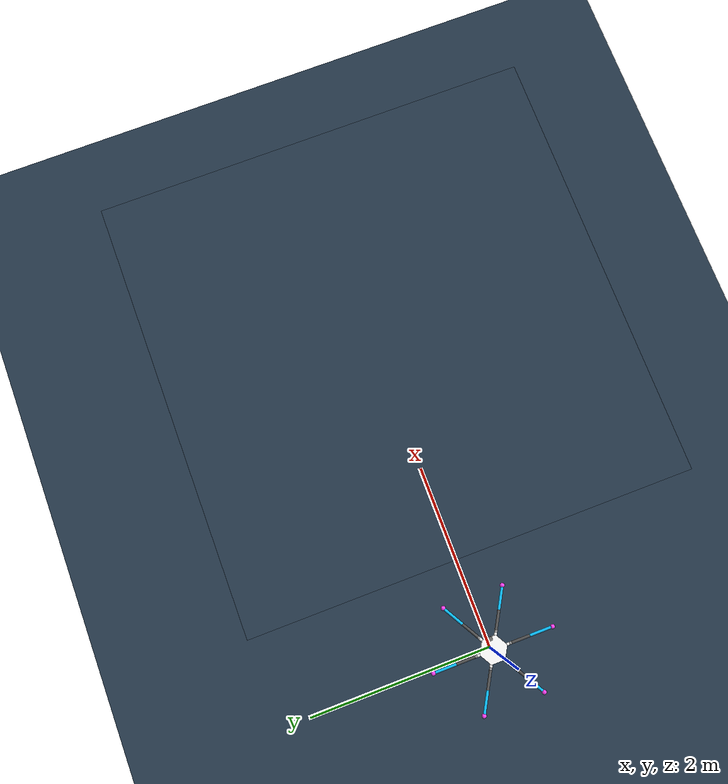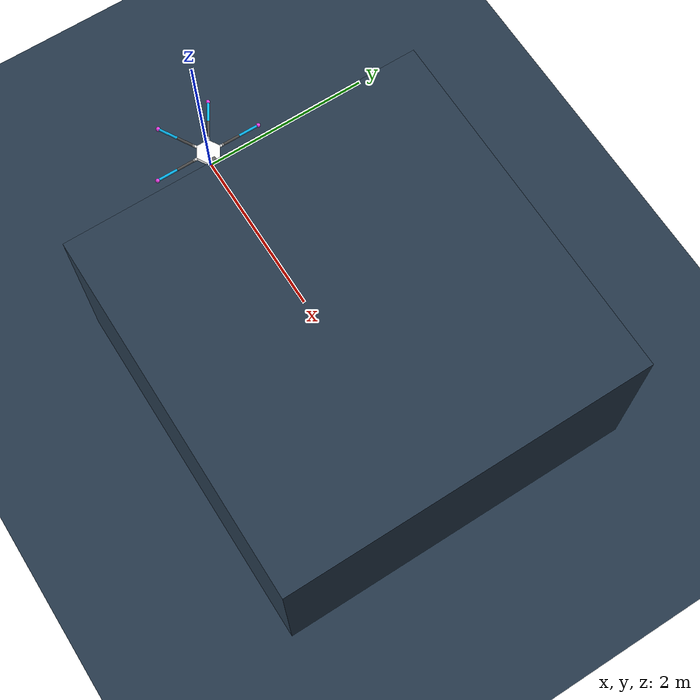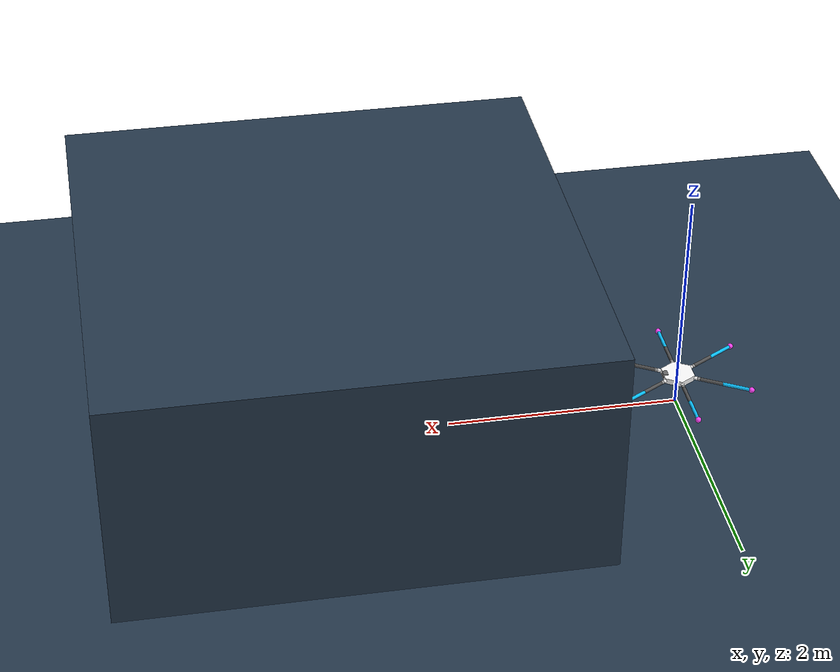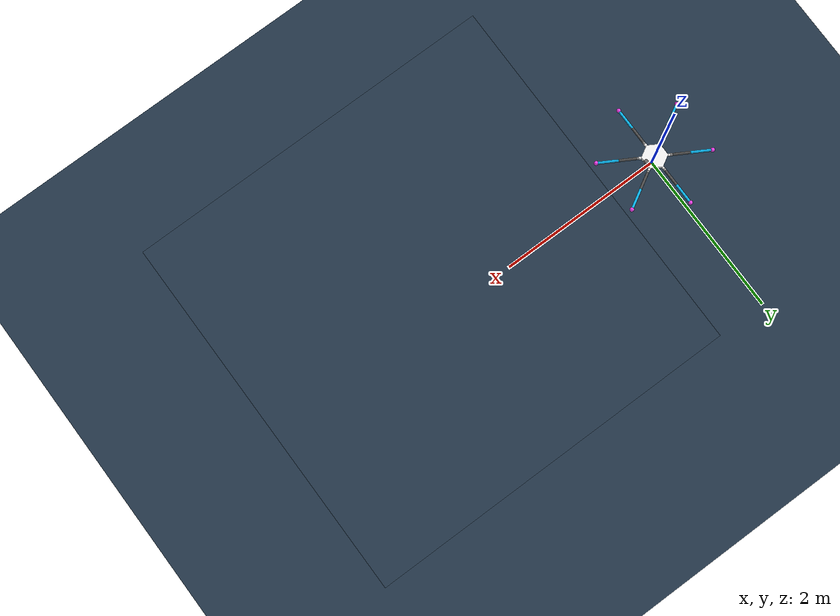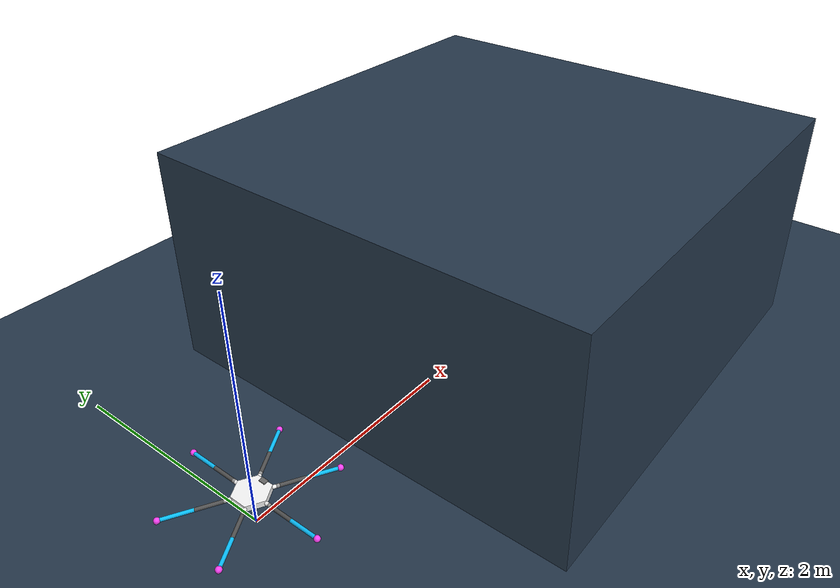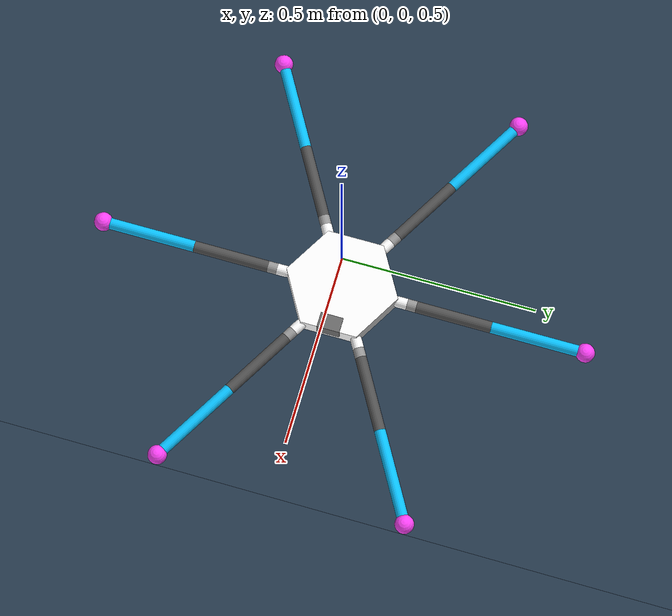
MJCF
<mujoco model="6x4DOF">
  <compiler angle="degree" autolimits="true"/>
  <option timestep="0.004" integrator="implicitfast" iterations="10" ls_iterations="8"/>

  <!-- viewer look: brighter headlight, no haze (reflection also off via material) -->
  <visual>
    <headlight ambient="0.4 0.4 0.4" diffuse="0.65 0.65 0.65" specular="0.1 0.1 0.1"/>
    <map haze="0"/>
  </visual>

  <default>
    <geom density="660" friction="1.0 0.5 0.5" contype="0" conaffinity="1"/>
    <default class="hexapod">
      <joint type="hinge" armature="0.008" damping="0.4" frictionloss="0.02"/>
      <geom type="capsule" size="0.015"/>
      <position kp="200" kv="6" forcerange="-8 8"/>
      <default class="seg0">
        <joint axis="0 0 1" range="-80 80"/>
        <geom material="seg0"/>
      </default>
      <default class="seg1">
        <joint axis="1 0 0" range="-90 90"/>
        <geom material="seg1"/>
      </default>
      <default class="seg2">
        <joint axis="0 1 0" range="-120 120"/>
        <geom material="seg2"/>
      </default>
      <default class="seg3">
        <joint axis="0 1 0" range="0 120"/>
        <geom material="seg3"/>
      </default>
    </default>
  </default>

  <asset>
    <material name="base"  rgba="1 1 1 1"/>
    <material name="head"  rgba="0.419608 0.419608 0.419608 1"/>
    <material name="seg0"  rgba="1 1 1 1"/>
    <material name="seg1"  rgba="0.6 0.6 0.6 1"/>
    <material name="seg2"  rgba="0.321569 0.321569 0.321569 1"/>
    <material name="seg3"  rgba="0.0392157 0.760784 1 1"/>
    <material name="foot"  rgba="1 0.258824 0.976471 1"/>

    <texture type="skybox" builtin="gradient" rgb1="0.3 0.5 0.7" rgb2="0 0 0" width="512" height="512"/>
    <texture name="grid" type="2d" builtin="checker" rgb1="0.2 0.3 0.4" rgb2="0.1 0.15 0.2"
             width="512" height="512"/>
    <material name="boxmat" rgba="0.75 0.55 0.35 1"/>
    <material name="grid" texture="grid" texrepeat="10 10" reflectance="0"/>
    <mesh name="hexbody" vertex="
       0.12990  0.07500  0.02500
       0.00000  0.15000  0.02500
      -0.12990  0.07500  0.02500
      -0.12990 -0.07500  0.02500
      -0.00000 -0.15000  0.02500
       0.12990 -0.07500  0.02500
       0.12990  0.07500 -0.02500
       0.00000  0.15000 -0.02500
      -0.12990  0.07500 -0.02500
      -0.12990 -0.07500 -0.02500
      -0.00000 -0.15000 -0.02500
       0.12990 -0.07500 -0.02500"/>
  </asset>

  <worldbody>
    <light pos="0 0 2.0" dir="0 0 -1" diffuse="0.8 0.8 0.8"/>
    <geom name="floor" type="plane" size="0 0 0.05" material="grid" contype="1" conaffinity="1"
          priority="1" friction="2 0.5 0.5"/>

    <!-- climbing box: 4x4x2 full extents, near yz-face at x=1 (center 3,0,1 half 2,2,1) -->
    <geom name="box" type="box" pos="3 0 1" size="2 2 1"
          material="grid" contype="1" conaffinity="1" friction="5 0.5 0.5" condim="4" solimp="0.99 0.9999 0.0001 0.5 2"/>

    <body name="base" pos="0 0 0.285125">
      <freejoint name="root"/>
      <geom name="base" type="mesh" mesh="hexbody" material="base" density="2770"/>
      <geom name="head" type="box" pos="0.1125 0 0.0125" size="0.02 0.03 0.02" material="head"/>

      <!-- 6 legs, one per corner. Index -> corner:
             0 = FL (30)   1 = ML (90)   2 = BL (150)
             3 = BR (210)  4 = MR (270)  5 = FR (330) -->
      <body name="leg0_seg0" pos="0.129904 0.075 0" euler="0 0 30" childclass="hexapod">
        <joint name="leg0_seg0" class="seg0"/>
        <geom class="seg0" fromto="0 0 0 0.025 0 0"/>
        <body name="leg0_seg1" pos="0.025 0 0">
          <joint name="leg0_seg1" class="seg1"/>
          <geom class="seg1" fromto="0 0 0 0.025 0 0"/>
          <body name="leg0_seg2" pos="0.025 0 0">
            <joint name="leg0_seg2" class="seg2"/>
            <geom class="seg2" fromto="0 0 0 0.2 0 0"/>
            <body name="leg0_seg3" pos="0.2 0 0">
              <joint name="leg0_seg3" class="seg3"/>
              <geom class="seg3" fromto="0 0 0 0.25 0 0"/>
              <body name="foot0" pos="0.25 0 0">
                <geom name="foot0" type="sphere" size="0.025" density="1810" material="foot" condim="4" solimp="0.99 0.9999 0.0001 0.5 2" margin="0.01" gap="0.01" friction="5 0.5 0.5"/>
                <site name="foot0" size="0.012"/>
              </body>
            </body>
          </body>
        </body>
      </body>
      <body name="leg1_seg0" pos="9.18485e-18 0.15 0" euler="0 0 90" childclass="hexapod">
        <joint name="leg1_seg0" class="seg0"/>
        <geom class="seg0" fromto="0 0 0 0.025 0 0"/>
        <body name="leg1_seg1" pos="0.025 0 0">
          <joint name="leg1_seg1" class="seg1"/>
          <geom class="seg1" fromto="0 0 0 0.025 0 0"/>
          <body name="leg1_seg2" pos="0.025 0 0">
            <joint name="leg1_seg2" class="seg2"/>
            <geom class="seg2" fromto="0 0 0 0.2 0 0"/>
            <body name="leg1_seg3" pos="0.2 0 0">
              <joint name="leg1_seg3" class="seg3"/>
              <geom class="seg3" fromto="0 0 0 0.25 0 0"/>
              <body name="foot1" pos="0.25 0 0">
                <geom name="foot1" type="sphere" size="0.025" density="1810" material="foot" condim="4" solimp="0.99 0.9999 0.0001 0.5 2" margin="0.01" gap="0.01" friction="5 0.5 0.5"/>
                <site name="foot1" size="0.012"/>
              </body>
            </body>
          </body>
        </body>
      </body>
      <body name="leg2_seg0" pos="-0.129904 0.075 0" euler="0 0 150" childclass="hexapod">
        <joint name="leg2_seg0" class="seg0"/>
        <geom class="seg0" fromto="0 0 0 0.025 0 0"/>
        <body name="leg2_seg1" pos="0.025 0 0">
          <joint name="leg2_seg1" class="seg1"/>
          <geom class="seg1" fromto="0 0 0 0.025 0 0"/>
          <body name="leg2_seg2" pos="0.025 0 0">
            <joint name="leg2_seg2" class="seg2"/>
            <geom class="seg2" fromto="0 0 0 0.2 0 0"/>
            <body name="leg2_seg3" pos="0.2 0 0">
              <joint name="leg2_seg3" class="seg3"/>
              <geom class="seg3" fromto="0 0 0 0.25 0 0"/>
              <body name="foot2" pos="0.25 0 0">
                <geom name="foot2" type="sphere" size="0.025" density="1810" material="foot" condim="4" solimp="0.99 0.9999 0.0001 0.5 2" margin="0.01" gap="0.01" friction="5 0.5 0.5"/>
                <site name="foot2" size="0.012"/>
              </body>
            </body>
          </body>
        </body>
      </body>
      <body name="leg3_seg0" pos="-0.129904 -0.075 0" euler="0 0 210" childclass="hexapod">
        <joint name="leg3_seg0" class="seg0"/>
        <geom class="seg0" fromto="0 0 0 0.025 0 0"/>
        <body name="leg3_seg1" pos="0.025 0 0">
          <joint name="leg3_seg1" class="seg1"/>
          <geom class="seg1" fromto="0 0 0 0.025 0 0"/>
          <body name="leg3_seg2" pos="0.025 0 0">
            <joint name="leg3_seg2" class="seg2"/>
            <geom class="seg2" fromto="0 0 0 0.2 0 0"/>
            <body name="leg3_seg3" pos="0.2 0 0">
              <joint name="leg3_seg3" class="seg3"/>
              <geom class="seg3" fromto="0 0 0 0.25 0 0"/>
              <body name="foot3" pos="0.25 0 0">
                <geom name="foot3" type="sphere" size="0.025" density="1810" material="foot" condim="4" solimp="0.99 0.9999 0.0001 0.5 2" margin="0.01" gap="0.01" friction="5 0.5 0.5"/>
                <site name="foot3" size="0.012"/>
              </body>
            </body>
          </body>
        </body>
      </body>
      <body name="leg4_seg0" pos="-2.75546e-17 -0.15 0" euler="0 0 270" childclass="hexapod">
        <joint name="leg4_seg0" class="seg0"/>
        <geom class="seg0" fromto="0 0 0 0.025 0 0"/>
        <body name="leg4_seg1" pos="0.025 0 0">
          <joint name="leg4_seg1" class="seg1"/>
          <geom class="seg1" fromto="0 0 0 0.025 0 0"/>
          <body name="leg4_seg2" pos="0.025 0 0">
            <joint name="leg4_seg2" class="seg2"/>
            <geom class="seg2" fromto="0 0 0 0.2 0 0"/>
            <body name="leg4_seg3" pos="0.2 0 0">
              <joint name="leg4_seg3" class="seg3"/>
              <geom class="seg3" fromto="0 0 0 0.25 0 0"/>
              <body name="foot4" pos="0.25 0 0">
                <geom name="foot4" type="sphere" size="0.025" density="1810" material="foot" condim="4" solimp="0.99 0.9999 0.0001 0.5 2" margin="0.01" gap="0.01" friction="5 0.5 0.5"/>
                <site name="foot4" size="0.012"/>
              </body>
            </body>
          </body>
        </body>
      </body>
      <body name="leg5_seg0" pos="0.129904 -0.075 0" euler="0 0 330" childclass="hexapod">
        <joint name="leg5_seg0" class="seg0"/>
        <geom class="seg0" fromto="0 0 0 0.025 0 0"/>
        <body name="leg5_seg1" pos="0.025 0 0">
          <joint name="leg5_seg1" class="seg1"/>
          <geom class="seg1" fromto="0 0 0 0.025 0 0"/>
          <body name="leg5_seg2" pos="0.025 0 0">
            <joint name="leg5_seg2" class="seg2"/>
            <geom class="seg2" fromto="0 0 0 0.2 0 0"/>
            <body name="leg5_seg3" pos="0.2 0 0">
              <joint name="leg5_seg3" class="seg3"/>
              <geom class="seg3" fromto="0 0 0 0.25 0 0"/>
              <body name="foot5" pos="0.25 0 0">
                <geom name="foot5" type="sphere" size="0.025" density="1810" material="foot" condim="4" solimp="0.99 0.9999 0.0001 0.5 2" margin="0.01" gap="0.01" friction="5 0.5 0.5"/>
                <site name="foot5" size="0.012"/>
              </body>
            </body>
          </body>
        </body>
      </body>
    </body>
  </worldbody>

  <actuator>
    <position name="leg0_seg0" joint="leg0_seg0" class="hexapod"/>
    <position name="leg0_seg1" joint="leg0_seg1" class="hexapod"/>
    <position name="leg0_seg2" joint="leg0_seg2" class="hexapod"/>
    <position name="leg0_seg3" joint="leg0_seg3" class="hexapod"/>
    <position name="leg1_seg0" joint="leg1_seg0" class="hexapod"/>
    <position name="leg1_seg1" joint="leg1_seg1" class="hexapod"/>
    <position name="leg1_seg2" joint="leg1_seg2" class="hexapod"/>
    <position name="leg1_seg3" joint="leg1_seg3" class="hexapod"/>
    <position name="leg2_seg0" joint="leg2_seg0" class="hexapod"/>
    <position name="leg2_seg1" joint="leg2_seg1" class="hexapod"/>
    <position name="leg2_seg2" joint="leg2_seg2" class="hexapod"/>
    <position name="leg2_seg3" joint="leg2_seg3" class="hexapod"/>
    <position name="leg3_seg0" joint="leg3_seg0" class="hexapod"/>
    <position name="leg3_seg1" joint="leg3_seg1" class="hexapod"/>
    <position name="leg3_seg2" joint="leg3_seg2" class="hexapod"/>
    <position name="leg3_seg3" joint="leg3_seg3" class="hexapod"/>
    <position name="leg4_seg0" joint="leg4_seg0" class="hexapod"/>
    <position name="leg4_seg1" joint="leg4_seg1" class="hexapod"/>
    <position name="leg4_seg2" joint="leg4_seg2" class="hexapod"/>
    <position name="leg4_seg3" joint="leg4_seg3" class="hexapod"/>
    <position name="leg5_seg0" joint="leg5_seg0" class="hexapod"/>
    <position name="leg5_seg1" joint="leg5_seg1" class="hexapod"/>
    <position name="leg5_seg2" joint="leg5_seg2" class="hexapod"/>
    <position name="leg5_seg3" joint="leg5_seg3" class="hexapod"/>
  </actuator>

  <keyframe>
    <key name="home" qpos="0 0 0.285125 1 0 0 0  0 0 0.0523599 1.46608  0 0 0.0523599 1.46608  0 0 0.0523599 1.46608  0 0 0.0523599 1.46608  0 0 0.0523599 1.46608  0 0 0.0523599 1.46608"/>
  </keyframe>
  <equality>
    <weld name="wf0" body1="foot0" torquescale="0" active="false"/>
    <weld name="wf1" body1="foot1" torquescale="0" active="false"/>
    <weld name="wf2" body1="foot2" torquescale="0" active="false"/>
    <weld name="wf3" body1="foot3" torquescale="0" active="false"/>
    <weld name="wf4" body1="foot4" torquescale="0" active="false"/>
    <weld name="wf5" body1="foot5" torquescale="0" active="false"/>
  </equality>
</mujoco>
